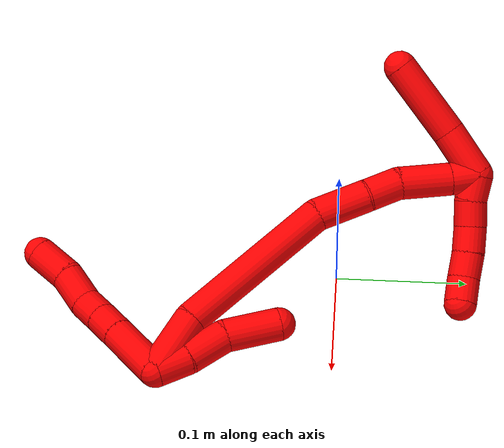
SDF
<sdf version="1.7">
 <world name="default">
  <model name="2">
   <static>0</static>
   <link name="2">
    <collision name="collision-cylinder-e_1_2_8">
     <pose>-0.023651 -0.005801 0.003019 1.09096 -1.30105 -0.865363</pose>
     <geometry><cylinder><radius>0.0125</radius><length>0.049076</length></cylinder></geometry>
     <surface>
      <friction><ode><mu>1.16</mu><mu2>1.16</mu2><slip1>0</slip1><slip2>0</slip2></ode></friction>
      <contact><ode><kp>1e+06</kp><kd>1</kd><max_vel>0</max_vel><min_depth>0.001</min_depth></ode></contact>
     </surface>
    </collision>
    <visual name="visual-cylinder-e_1_2_8">
     <pose>-0.023651 -0.005801 0.003019 1.09096 -1.30105 -0.865363</pose>
     <geometry><cylinder><radius>0.0125</radius><length>0.049076</length></cylinder></geometry>
     <material><ambient>1 0 0 1</ambient></material>
    </visual>
    <collision name="collision-cylinder-e_2_8_9">
     <pose>-0.058328 -0.014393 0.007398 1.11726 -1.29627 -0.884157</pose>
     <geometry><cylinder><radius>0.0125</radius><length>0.02291</length></cylinder></geometry>
     <surface>
      <friction><ode><mu>1.16</mu><mu2>1.16</mu2><slip1>0</slip1><slip2>0</slip2></ode></friction>
      <contact><ode><kp>1e+06</kp><kd>1</kd><max_vel>0</max_vel><min_depth>0.001</min_depth></ode></contact>
     </surface>
    </collision>
    <visual name="visual-cylinder-e_2_8_9">
     <pose>-0.058328 -0.014393 0.007398 1.11726 -1.29627 -0.884157</pose>
     <geometry><cylinder><radius>0.0125</radius><length>0.02291</length></cylinder></geometry>
     <material><ambient>1 0 0 1</ambient></material>
    </visual>
    <collision name="collision-cylinder-e_3_9_10">
     <pose>-0.079081 -0.0199 0.01066 0.960039 -1.24229 -0.713304</pose>
     <geometry><cylinder><radius>0.0125</radius><length>0.020554</length></cylinder></geometry>
     <surface>
      <friction><ode><mu>1.16</mu><mu2>1.16</mu2><slip1>0</slip1><slip2>0</slip2></ode></friction>
      <contact><ode><kp>1e+06</kp><kd>1</kd><max_vel>0</max_vel><min_depth>0.001</min_depth></ode></contact>
     </surface>
    </collision>
    <visual name="visual-cylinder-e_3_9_10">
     <pose>-0.079081 -0.0199 0.01066 0.960039 -1.24229 -0.713304</pose>
     <geometry><cylinder><radius>0.0125</radius><length>0.020554</length></cylinder></geometry>
     <material><ambient>1 0 0 1</ambient></material>
    </visual>
    <collision name="collision-cylinder-e_4_10_11">
     <pose>-0.10151 -0.023505 0.017973 0.162628 -1.16324 -0.107059</pose>
     <geometry><cylinder><radius>0.0125</radius><length>0.02767</length></cylinder></geometry>
     <surface>
      <friction><ode><mu>1.16</mu><mu2>1.16</mu2><slip1>0</slip1><slip2>0</slip2></ode></friction>
      <contact><ode><kp>1e+06</kp><kd>1</kd><max_vel>0</max_vel><min_depth>0.001</min_depth></ode></contact>
     </surface>
    </collision>
    <visual name="visual-cylinder-e_4_10_11">
     <pose>-0.10151 -0.023505 0.017973 0.162628 -1.16324 -0.107059</pose>
     <geometry><cylinder><radius>0.0125</radius><length>0.02767</length></cylinder></geometry>
     <material><ambient>1 0 0 1</ambient></material>
    </visual>
    <collision name="collision-cylinder-e_5_11_6">
     <pose>-0.127235 -0.028956 0.028991 0.683121 -1.06404 -0.412557</pose>
     <geometry><cylinder><radius>0.0125</radius><length>0.02979</length></cylinder></geometry>
     <surface>
      <friction><ode><mu>1.16</mu><mu2>1.16</mu2><slip1>0</slip1><slip2>0</slip2></ode></friction>
      <contact><ode><kp>1e+06</kp><kd>1</kd><max_vel>0</max_vel><min_depth>0.001</min_depth></ode></contact>
     </surface>
    </collision>
    <visual name="visual-cylinder-e_5_11_6">
     <pose>-0.127235 -0.028956 0.028991 0.683121 -1.06404 -0.412557</pose>
     <geometry><cylinder><radius>0.0125</radius><length>0.02979</length></cylinder></geometry>
     <material><ambient>1 0 0 1</ambient></material>
    </visual>
    <collision name="collision-cylinder-e_1_2_12">
     <pose>-0.000959 0.012029 -0.004758 -1.94743 -0.074038 0.108844</pose>
     <geometry><cylinder><radius>0.0125</radius><length>0.025942</length></cylinder></geometry>
     <surface>
      <friction><ode><mu>1.16</mu><mu2>1.16</mu2><slip1>0</slip1><slip2>0</slip2></ode></friction>
      <contact><ode><kp>1e+06</kp><kd>1</kd><max_vel>0</max_vel><min_depth>0.001</min_depth></ode></contact>
     </surface>
    </collision>
    <visual name="visual-cylinder-e_1_2_12">
     <pose>-0.000959 0.012029 -0.004758 -1.94743 -0.074038 0.108844</pose>
     <geometry><cylinder><radius>0.0125</radius><length>0.025942</length></cylinder></geometry>
     <material><ambient>1 0 0 1</ambient></material>
    </visual>
    <collision name="collision-cylinder-e_2_12_13">
     <pose>-0.005421 0.039109 -0.013981 -1.8592 -0.219467 0.293103</pose>
     <geometry><cylinder><radius>0.0125</radius><length>0.032171</length></cylinder></geometry>
     <surface>
      <friction><ode><mu>1.16</mu><mu2>1.16</mu2><slip1>0</slip1><slip2>0</slip2></ode></friction>
      <contact><ode><kp>1e+06</kp><kd>1</kd><max_vel>0</max_vel><min_depth>0.001</min_depth></ode></contact>
     </surface>
    </collision>
    <visual name="visual-cylinder-e_2_12_13">
     <pose>-0.005421 0.039109 -0.013981 -1.8592 -0.219467 0.293103</pose>
     <geometry><cylinder><radius>0.0125</radius><length>0.032171</length></cylinder></geometry>
     <material><ambient>1 0 0 1</ambient></material>
    </visual>
    <collision name="collision-cylinder-e_3_13_5">
     <pose>-0.007234 0.073005 -0.027426 -2.01546 0.080711 -0.127759</pose>
     <geometry><cylinder><radius>0.0125</radius><length>0.041887</length></cylinder></geometry>
     <surface>
      <friction><ode><mu>1.16</mu><mu2>1.16</mu2><slip1>0</slip1><slip2>0</slip2></ode></friction>
      <contact><ode><kp>1e+06</kp><kd>1</kd><max_vel>0</max_vel><min_depth>0.001</min_depth></ode></contact>
     </surface>
    </collision>
    <visual name="visual-cylinder-e_3_13_5">
     <pose>-0.007234 0.073005 -0.027426 -2.01546 0.080711 -0.127759</pose>
     <geometry><cylinder><radius>0.0125</radius><length>0.041887</length></cylinder></geometry>
     <material><ambient>1 0 0 1</ambient></material>
    </visual>
    <collision name="collision-cylinder-e_1_2_14">
     <pose>-0.012517 0.02037 -0.000249 -1.58304 -0.550991 0.557437</pose>
     <geometry><cylinder><radius>0.0125</radius><length>0.047819</length></cylinder></geometry>
     <surface>
      <friction><ode><mu>1.16</mu><mu2>1.16</mu2><slip1>0</slip1><slip2>0</slip2></ode></friction>
      <contact><ode><kp>1e+06</kp><kd>1</kd><max_vel>0</max_vel><min_depth>0.001</min_depth></ode></contact>
     </surface>
    </collision>
    <visual name="visual-cylinder-e_1_2_14">
     <pose>-0.012517 0.02037 -0.000249 -1.58304 -0.550991 0.557437</pose>
     <geometry><cylinder><radius>0.0125</radius><length>0.047819</length></cylinder></geometry>
     <material><ambient>1 0 0 1</ambient></material>
    </visual>
    <collision name="collision-cylinder-e_2_14_15">
     <pose>-0.041825 0.099947 -0.007994 -1.69671 -0.27424 0.310587</pose>
     <geometry><cylinder><radius>0.0125</radius><length>0.123994</length></cylinder></geometry>
     <surface>
      <friction><ode><mu>1.16</mu><mu2>1.16</mu2><slip1>0</slip1><slip2>0</slip2></ode></friction>
      <contact><ode><kp>1e+06</kp><kd>1</kd><max_vel>0</max_vel><min_depth>0.001</min_depth></ode></contact>
     </surface>
    </collision>
    <visual name="visual-cylinder-e_2_14_15">
     <pose>-0.041825 0.099947 -0.007994 -1.69671 -0.27424 0.310587</pose>
     <geometry><cylinder><radius>0.0125</radius><length>0.123994</length></cylinder></geometry>
     <material><ambient>1 0 0 1</ambient></material>
    </visual>
    <collision name="collision-cylinder-e_3_15_16">
     <pose>-0.057728 0.178868 -0.020838 -1.83576 0.043337 -0.056657</pose>
     <geometry><cylinder><radius>0.0125</radius><length>0.040892</length></cylinder></geometry>
     <surface>
      <friction><ode><mu>1.16</mu><mu2>1.16</mu2><slip1>0</slip1><slip2>0</slip2></ode></friction>
      <contact><ode><kp>1e+06</kp><kd>1</kd><max_vel>0</max_vel><min_depth>0.001</min_depth></ode></contact>
     </surface>
    </collision>
    <visual name="visual-cylinder-e_3_15_16">
     <pose>-0.057728 0.178868 -0.020838 -1.83576 0.043337 -0.056657</pose>
     <geometry><cylinder><radius>0.0125</radius><length>0.040892</length></cylinder></geometry>
     <material><ambient>1 0 0 1</ambient></material>
    </visual>
    <collision name="collision-cylinder-e_4_16_17">
     <pose>-0.057654 0.210805 -0.030677 -1.92281 -0.06225 0.089151</pose>
     <geometry><cylinder><radius>0.0125</radius><length>0.026093</length></cylinder></geometry>
     <surface>
      <friction><ode><mu>1.16</mu><mu2>1.16</mu2><slip1>0</slip1><slip2>0</slip2></ode></friction>
      <contact><ode><kp>1e+06</kp><kd>1</kd><max_vel>0</max_vel><min_depth>0.001</min_depth></ode></contact>
     </surface>
    </collision>
    <visual name="visual-cylinder-e_4_16_17">
     <pose>-0.057654 0.210805 -0.030677 -1.92281 -0.06225 0.089151</pose>
     <geometry><cylinder><radius>0.0125</radius><length>0.026093</length></cylinder></geometry>
     <material><ambient>1 0 0 1</ambient></material>
    </visual>
    <collision name="collision-cylinder-e_5_17_18">
     <pose>-0.055021 0.240211 -0.045041 -2.09234 0.172108 -0.295951</pose>
     <geometry><cylinder><radius>0.0125</radius><length>0.040231</length></cylinder></geometry>
     <surface>
      <friction><ode><mu>1.16</mu><mu2>1.16</mu2><slip1>0</slip1><slip2>0</slip2></ode></friction>
      <contact><ode><kp>1e+06</kp><kd>1</kd><max_vel>0</max_vel><min_depth>0.001</min_depth></ode></contact>
     </surface>
    </collision>
    <visual name="visual-cylinder-e_5_17_18">
     <pose>-0.055021 0.240211 -0.045041 -2.09234 0.172108 -0.295951</pose>
     <geometry><cylinder><radius>0.0125</radius><length>0.040231</length></cylinder></geometry>
     <material><ambient>1 0 0 1</ambient></material>
    </visual>
    <collision name="collision-cylinder-e_6_18_1">
     <pose>-0.049719 0.266807 -0.059146 -1.99327 0.178036 -0.274232</pose>
     <geometry><cylinder><radius>0.0125</radius><length>0.020971</length></cylinder></geometry>
     <surface>
      <friction><ode><mu>1.16</mu><mu2>1.16</mu2><slip1>0</slip1><slip2>0</slip2></ode></friction>
      <contact><ode><kp>1e+06</kp><kd>1</kd><max_vel>0</max_vel><min_depth>0.001</min_depth></ode></contact>
     </surface>
    </collision>
    <visual name="visual-cylinder-e_6_18_1">
     <pose>-0.049719 0.266807 -0.059146 -1.99327 0.178036 -0.274232</pose>
     <geometry><cylinder><radius>0.0125</radius><length>0.020971</length></cylinder></geometry>
     <material><ambient>1 0 0 1</ambient></material>
    </visual>
    <collision name="collision-cylinder-e_1_1_19">
     <pose>-0.043569 0.268875 -0.068634 2.19205 0.443674 0.827042</pose>
     <geometry><cylinder><radius>0.0125</radius><length>0.02</length></cylinder></geometry>
     <surface>
      <friction><ode><mu>1.16</mu><mu2>1.16</mu2><slip1>0</slip1><slip2>0</slip2></ode></friction>
      <contact><ode><kp>1e+06</kp><kd>1</kd><max_vel>0</max_vel><min_depth>0.001</min_depth></ode></contact>
     </surface>
    </collision>
    <visual name="visual-cylinder-e_1_1_19">
     <pose>-0.043569 0.268875 -0.068634 2.19205 0.443674 0.827042</pose>
     <geometry><cylinder><radius>0.0125</radius><length>0.02</length></cylinder></geometry>
     <material><ambient>1 0 0 1</ambient></material>
    </visual>
    <collision name="collision-cylinder-e_2_19_20">
     <pose>-0.03389 0.255917 -0.080173 2.41221 0.568838 1.30703</pose>
     <geometry><cylinder><radius>0.0125</radius><length>0.02</length></cylinder></geometry>
     <surface>
      <friction><ode><mu>1.16</mu><mu2>1.16</mu2><slip1>0</slip1><slip2>0</slip2></ode></friction>
      <contact><ode><kp>1e+06</kp><kd>1</kd><max_vel>0</max_vel><min_depth>0.001</min_depth></ode></contact>
     </surface>
    </collision>
    <visual name="visual-cylinder-e_2_19_20">
     <pose>-0.03389 0.255917 -0.080173 2.41221 0.568838 1.30703</pose>
     <geometry><cylinder><radius>0.0125</radius><length>0.02</length></cylinder></geometry>
     <material><ambient>1 0 0 1</ambient></material>
    </visual>
    <collision name="collision-cylinder-e_3_20_21">
     <pose>-0.022441 0.24414 -0.091482 2.25515 0.651432 1.23676</pose>
     <geometry><cylinder><radius>0.0125</radius><length>0.02</length></cylinder></geometry>
     <surface>
      <friction><ode><mu>1.16</mu><mu2>1.16</mu2><slip1>0</slip1><slip2>0</slip2></ode></friction>
      <contact><ode><kp>1e+06</kp><kd>1</kd><max_vel>0</max_vel><min_depth>0.001</min_depth></ode></contact>
     </surface>
    </collision>
    <visual name="visual-cylinder-e_3_20_21">
     <pose>-0.022441 0.24414 -0.091482 2.25515 0.651432 1.23676</pose>
     <geometry><cylinder><radius>0.0125</radius><length>0.02</length></cylinder></geometry>
     <material><ambient>1 0 0 1</ambient></material>
    </visual>
    <collision name="collision-cylinder-e_4_21_22">
     <pose>-0.010662 0.231043 -0.100895 2.13463 0.608369 1.03601</pose>
     <geometry><cylinder><radius>0.0125</radius><length>0.02</length></cylinder></geometry>
     <surface>
      <friction><ode><mu>1.16</mu><mu2>1.16</mu2><slip1>0</slip1><slip2>0</slip2></ode></friction>
      <contact><ode><kp>1e+06</kp><kd>1</kd><max_vel>0</max_vel><min_depth>0.001</min_depth></ode></contact>
     </surface>
    </collision>
    <visual name="visual-cylinder-e_4_21_22">
     <pose>-0.010662 0.231043 -0.100895 2.13463 0.608369 1.03601</pose>
     <geometry><cylinder><radius>0.0125</radius><length>0.02</length></cylinder></geometry>
     <material><ambient>1 0 0 1</ambient></material>
    </visual>
    <collision name="collision-cylinder-e_5_22_4">
     <pose>0.002185 0.217758 -0.10825 2.00832 0.793998 1.16531</pose>
     <geometry><cylinder><radius>0.0125</radius><length>0.02</length></cylinder></geometry>
     <surface>
      <friction><ode><mu>1.16</mu><mu2>1.16</mu2><slip1>0</slip1><slip2>0</slip2></ode></friction>
      <contact><ode><kp>1e+06</kp><kd>1</kd><max_vel>0</max_vel><min_depth>0.001</min_depth></ode></contact>
     </surface>
    </collision>
    <visual name="visual-cylinder-e_5_22_4">
     <pose>0.002185 0.217758 -0.10825 2.00832 0.793998 1.16531</pose>
     <geometry><cylinder><radius>0.0125</radius><length>0.02</length></cylinder></geometry>
     <material><ambient>1 0 0 1</ambient></material>
    </visual>
    <collision name="collision-cylinder-e_1_1_23">
     <pose>-0.061426 0.276203 -0.04957 0.001203 -0.77651 -0.000492</pose>
     <geometry><cylinder><radius>0.0125</radius><length>0.038709</length></cylinder></geometry>
     <surface>
      <friction><ode><mu>1.16</mu><mu2>1.16</mu2><slip1>0</slip1><slip2>0</slip2></ode></friction>
      <contact><ode><kp>1e+06</kp><kd>1</kd><max_vel>0</max_vel><min_depth>0.001</min_depth></ode></contact>
     </surface>
    </collision>
    <visual name="visual-cylinder-e_1_1_23">
     <pose>-0.061426 0.276203 -0.04957 0.001203 -0.77651 -0.000492</pose>
     <geometry><cylinder><radius>0.0125</radius><length>0.038709</length></cylinder></geometry>
     <material><ambient>1 0 0 1</ambient></material>
    </visual>
    <collision name="collision-cylinder-e_2_23_3">
     <pose>-0.094664 0.274656 -0.012318 0.065202 -0.697138 -0.023702</pose>
     <geometry><cylinder><radius>0.0125</radius><length>0.061291</length></cylinder></geometry>
     <surface>
      <friction><ode><mu>1.16</mu><mu2>1.16</mu2><slip1>0</slip1><slip2>0</slip2></ode></friction>
      <contact><ode><kp>1e+06</kp><kd>1</kd><max_vel>0</max_vel><min_depth>0.001</min_depth></ode></contact>
     </surface>
    </collision>
    <visual name="visual-cylinder-e_2_23_3">
     <pose>-0.094664 0.274656 -0.012318 0.065202 -0.697138 -0.023702</pose>
     <geometry><cylinder><radius>0.0125</radius><length>0.061291</length></cylinder></geometry>
     <material><ambient>1 0 0 1</ambient></material>
    </visual>
    <collision name="collision-sphere-3">
     <pose>-0.11434 0.273125 0.011127 0 -0 0</pose>
     <geometry><sphere><radius>0.0125</radius></sphere></geometry>
     <surface>
      <friction><ode><mu>1.16</mu><mu2>1.16</mu2><slip1>0</slip1><slip2>0</slip2></ode></friction>
      <contact><ode><kp>1e+06</kp><kd>1</kd><max_vel>0</max_vel><min_depth>0.001</min_depth></ode></contact>
     </surface>
    </collision>
    <visual name="visual-sphere-3">
     <pose>-0.11434 0.273125 0.011127 0 -0 0</pose>
     <geometry><sphere><radius>0.0125</radius></sphere></geometry>
     <material><ambient>1 0 0 1</ambient></material>
    </visual>
    <collision name="collision-sphere-23">
     <pose>-0.074989 0.276186 -0.035763 0 -0 0</pose>
     <geometry><sphere><radius>0.0125</radius></sphere></geometry>
     <surface>
      <friction><ode><mu>1.16</mu><mu2>1.16</mu2><slip1>0</slip1><slip2>0</slip2></ode></friction>
      <contact><ode><kp>1e+06</kp><kd>1</kd><max_vel>0</max_vel><min_depth>0.001</min_depth></ode></contact>
     </surface>
    </collision>
    <visual name="visual-sphere-23">
     <pose>-0.074989 0.276186 -0.035763 0 -0 0</pose>
     <geometry><sphere><radius>0.0125</radius></sphere></geometry>
     <material><ambient>1 0 0 1</ambient></material>
    </visual>
    <collision name="collision-sphere-4">
     <pose>0.009317 0.211408 -0.11122 0 -0 0</pose>
     <geometry><sphere><radius>0.0125</radius></sphere></geometry>
     <surface>
      <friction><ode><mu>1.16</mu><mu2>1.16</mu2><slip1>0</slip1><slip2>0</slip2></ode></friction>
      <contact><ode><kp>1e+06</kp><kd>1</kd><max_vel>0</max_vel><min_depth>0.001</min_depth></ode></contact>
     </surface>
    </collision>
    <visual name="visual-sphere-4">
     <pose>0.009317 0.211408 -0.11122 0 -0 0</pose>
     <geometry><sphere><radius>0.0125</radius></sphere></geometry>
     <material><ambient>1 0 0 1</ambient></material>
    </visual>
    <collision name="collision-sphere-22">
     <pose>-0.004947 0.224107 -0.10528 0 -0 0</pose>
     <geometry><sphere><radius>0.0125</radius></sphere></geometry>
     <surface>
      <friction><ode><mu>1.16</mu><mu2>1.16</mu2><slip1>0</slip1><slip2>0</slip2></ode></friction>
      <contact><ode><kp>1e+06</kp><kd>1</kd><max_vel>0</max_vel><min_depth>0.001</min_depth></ode></contact>
     </surface>
    </collision>
    <visual name="visual-sphere-22">
     <pose>-0.004947 0.224107 -0.10528 0 -0 0</pose>
     <geometry><sphere><radius>0.0125</radius></sphere></geometry>
     <material><ambient>1 0 0 1</ambient></material>
    </visual>
    <collision name="collision-sphere-21">
     <pose>-0.016377 0.237979 -0.096509 0 -0 0</pose>
     <geometry><sphere><radius>0.0125</radius></sphere></geometry>
     <surface>
      <friction><ode><mu>1.16</mu><mu2>1.16</mu2><slip1>0</slip1><slip2>0</slip2></ode></friction>
      <contact><ode><kp>1e+06</kp><kd>1</kd><max_vel>0</max_vel><min_depth>0.001</min_depth></ode></contact>
     </surface>
    </collision>
    <visual name="visual-sphere-21">
     <pose>-0.016377 0.237979 -0.096509 0 -0 0</pose>
     <geometry><sphere><radius>0.0125</radius></sphere></geometry>
     <material><ambient>1 0 0 1</ambient></material>
    </visual>
    <collision name="collision-sphere-20">
     <pose>-0.028504 0.250302 -0.086455 0 -0 0</pose>
     <geometry><sphere><radius>0.0125</radius></sphere></geometry>
     <surface>
      <friction><ode><mu>1.16</mu><mu2>1.16</mu2><slip1>0</slip1><slip2>0</slip2></ode></friction>
      <contact><ode><kp>1e+06</kp><kd>1</kd><max_vel>0</max_vel><min_depth>0.001</min_depth></ode></contact>
     </surface>
    </collision>
    <visual name="visual-sphere-20">
     <pose>-0.028504 0.250302 -0.086455 0 -0 0</pose>
     <geometry><sphere><radius>0.0125</radius></sphere></geometry>
     <material><ambient>1 0 0 1</ambient></material>
    </visual>
    <collision name="collision-sphere-6">
     <pose>-0.140258 -0.033519 0.034598 0 -0 0</pose>
     <geometry><sphere><radius>0.0125</radius></sphere></geometry>
     <surface>
      <friction><ode><mu>1.16</mu><mu2>1.16</mu2><slip1>0</slip1><slip2>0</slip2></ode></friction>
      <contact><ode><kp>1e+06</kp><kd>1</kd><max_vel>0</max_vel><min_depth>0.001</min_depth></ode></contact>
     </surface>
    </collision>
    <visual name="visual-sphere-6">
     <pose>-0.140258 -0.033519 0.034598 0 -0 0</pose>
     <geometry><sphere><radius>0.0125</radius></sphere></geometry>
     <material><ambient>1 0 0 1</ambient></material>
    </visual>
    <collision name="collision-sphere-11">
     <pose>-0.114212 -0.024393 0.023384 0 -0 0</pose>
     <geometry><sphere><radius>0.0125</radius></sphere></geometry>
     <surface>
      <friction><ode><mu>1.16</mu><mu2>1.16</mu2><slip1>0</slip1><slip2>0</slip2></ode></friction>
      <contact><ode><kp>1e+06</kp><kd>1</kd><max_vel>0</max_vel><min_depth>0.001</min_depth></ode></contact>
     </surface>
    </collision>
    <visual name="visual-sphere-11">
     <pose>-0.114212 -0.024393 0.023384 0 -0 0</pose>
     <geometry><sphere><radius>0.0125</radius></sphere></geometry>
     <material><ambient>1 0 0 1</ambient></material>
    </visual>
    <collision name="collision-sphere-10">
     <pose>-0.088809 -0.022617 0.012562 0 -0 0</pose>
     <geometry><sphere><radius>0.0125</radius></sphere></geometry>
     <surface>
      <friction><ode><mu>1.16</mu><mu2>1.16</mu2><slip1>0</slip1><slip2>0</slip2></ode></friction>
      <contact><ode><kp>1e+06</kp><kd>1</kd><max_vel>0</max_vel><min_depth>0.001</min_depth></ode></contact>
     </surface>
    </collision>
    <visual name="visual-sphere-10">
     <pose>-0.088809 -0.022617 0.012562 0 -0 0</pose>
     <geometry><sphere><radius>0.0125</radius></sphere></geometry>
     <material><ambient>1 0 0 1</ambient></material>
    </visual>
    <collision name="collision-sphere-9">
     <pose>-0.069354 -0.017184 0.008759 0 -0 0</pose>
     <geometry><sphere><radius>0.0125</radius></sphere></geometry>
     <surface>
      <friction><ode><mu>1.16</mu><mu2>1.16</mu2><slip1>0</slip1><slip2>0</slip2></ode></friction>
      <contact><ode><kp>1e+06</kp><kd>1</kd><max_vel>0</max_vel><min_depth>0.001</min_depth></ode></contact>
     </surface>
    </collision>
    <visual name="visual-sphere-9">
     <pose>-0.069354 -0.017184 0.008759 0 -0 0</pose>
     <geometry><sphere><radius>0.0125</radius></sphere></geometry>
     <material><ambient>1 0 0 1</ambient></material>
    </visual>
    <collision name="collision-sphere-2">
     <geometry><sphere><radius>0.0125</radius></sphere></geometry>
     <surface>
      <friction><ode><mu>1.16</mu><mu2>1.16</mu2><slip1>0</slip1><slip2>0</slip2></ode></friction>
      <contact><ode><kp>1e+06</kp><kd>1</kd><max_vel>0</max_vel><min_depth>0.001</min_depth></ode></contact>
     </surface>
    </collision>
    <visual name="visual-sphere-2">
     <geometry><sphere><radius>0.0125</radius></sphere></geometry>
     <material><ambient>1 0 0 1</ambient></material>
    </visual>
    <collision name="collision-sphere-19">
     <pose>-0.039277 0.261531 -0.073891 0 -0 0</pose>
     <geometry><sphere><radius>0.0125</radius></sphere></geometry>
     <surface>
      <friction><ode><mu>1.16</mu><mu2>1.16</mu2><slip1>0</slip1><slip2>0</slip2></ode></friction>
      <contact><ode><kp>1e+06</kp><kd>1</kd><max_vel>0</max_vel><min_depth>0.001</min_depth></ode></contact>
     </surface>
    </collision>
    <visual name="visual-sphere-19">
     <pose>-0.039277 0.261531 -0.073891 0 -0 0</pose>
     <geometry><sphere><radius>0.0125</radius></sphere></geometry>
     <material><ambient>1 0 0 1</ambient></material>
    </visual>
    <collision name="collision-sphere-8">
     <pose>-0.047302 -0.011601 0.006037 0 -0 0</pose>
     <geometry><sphere><radius>0.0125</radius></sphere></geometry>
     <surface>
      <friction><ode><mu>1.16</mu><mu2>1.16</mu2><slip1>0</slip1><slip2>0</slip2></ode></friction>
      <contact><ode><kp>1e+06</kp><kd>1</kd><max_vel>0</max_vel><min_depth>0.001</min_depth></ode></contact>
     </surface>
    </collision>
    <visual name="visual-sphere-8">
     <pose>-0.047302 -0.011601 0.006037 0 -0 0</pose>
     <geometry><sphere><radius>0.0125</radius></sphere></geometry>
     <material><ambient>1 0 0 1</ambient></material>
    </visual>
    <collision name="collision-sphere-12">
     <pose>-0.001919 0.024057 -0.009515 0 -0 0</pose>
     <geometry><sphere><radius>0.0125</radius></sphere></geometry>
     <surface>
      <friction><ode><mu>1.16</mu><mu2>1.16</mu2><slip1>0</slip1><slip2>0</slip2></ode></friction>
      <contact><ode><kp>1e+06</kp><kd>1</kd><max_vel>0</max_vel><min_depth>0.001</min_depth></ode></contact>
     </surface>
    </collision>
    <visual name="visual-sphere-12">
     <pose>-0.001919 0.024057 -0.009515 0 -0 0</pose>
     <geometry><sphere><radius>0.0125</radius></sphere></geometry>
     <material><ambient>1 0 0 1</ambient></material>
    </visual>
    <collision name="collision-sphere-13">
     <pose>-0.008923 0.05416 -0.018446 0 -0 0</pose>
     <geometry><sphere><radius>0.0125</radius></sphere></geometry>
     <surface>
      <friction><ode><mu>1.16</mu><mu2>1.16</mu2><slip1>0</slip1><slip2>0</slip2></ode></friction>
      <contact><ode><kp>1e+06</kp><kd>1</kd><max_vel>0</max_vel><min_depth>0.001</min_depth></ode></contact>
     </surface>
    </collision>
    <visual name="visual-sphere-13">
     <pose>-0.008923 0.05416 -0.018446 0 -0 0</pose>
     <geometry><sphere><radius>0.0125</radius></sphere></geometry>
     <material><ambient>1 0 0 1</ambient></material>
    </visual>
    <collision name="collision-sphere-5">
     <pose>-0.005546 0.091851 -0.036405 0 -0 0</pose>
     <geometry><sphere><radius>0.0125</radius></sphere></geometry>
     <surface>
      <friction><ode><mu>1.16</mu><mu2>1.16</mu2><slip1>0</slip1><slip2>0</slip2></ode></friction>
      <contact><ode><kp>1e+06</kp><kd>1</kd><max_vel>0</max_vel><min_depth>0.001</min_depth></ode></contact>
     </surface>
    </collision>
    <visual name="visual-sphere-5">
     <pose>-0.005546 0.091851 -0.036405 0 -0 0</pose>
     <geometry><sphere><radius>0.0125</radius></sphere></geometry>
     <material><ambient>1 0 0 1</ambient></material>
    </visual>
    <collision name="collision-sphere-14">
     <pose>-0.025035 0.040739 -0.000499 0 -0 0</pose>
     <geometry><sphere><radius>0.0125</radius></sphere></geometry>
     <surface>
      <friction><ode><mu>1.16</mu><mu2>1.16</mu2><slip1>0</slip1><slip2>0</slip2></ode></friction>
      <contact><ode><kp>1e+06</kp><kd>1</kd><max_vel>0</max_vel><min_depth>0.001</min_depth></ode></contact>
     </surface>
    </collision>
    <visual name="visual-sphere-14">
     <pose>-0.025035 0.040739 -0.000499 0 -0 0</pose>
     <geometry><sphere><radius>0.0125</radius></sphere></geometry>
     <material><ambient>1 0 0 1</ambient></material>
    </visual>
    <collision name="collision-sphere-15">
     <pose>-0.058614 0.159155 -0.015489 0 -0 0</pose>
     <geometry><sphere><radius>0.0125</radius></sphere></geometry>
     <surface>
      <friction><ode><mu>1.16</mu><mu2>1.16</mu2><slip1>0</slip1><slip2>0</slip2></ode></friction>
      <contact><ode><kp>1e+06</kp><kd>1</kd><max_vel>0</max_vel><min_depth>0.001</min_depth></ode></contact>
     </surface>
    </collision>
    <visual name="visual-sphere-15">
     <pose>-0.058614 0.159155 -0.015489 0 -0 0</pose>
     <geometry><sphere><radius>0.0125</radius></sphere></geometry>
     <material><ambient>1 0 0 1</ambient></material>
    </visual>
    <collision name="collision-sphere-16">
     <pose>-0.056843 0.198582 -0.026188 0 -0 0</pose>
     <geometry><sphere><radius>0.0125</radius></sphere></geometry>
     <surface>
      <friction><ode><mu>1.16</mu><mu2>1.16</mu2><slip1>0</slip1><slip2>0</slip2></ode></friction>
      <contact><ode><kp>1e+06</kp><kd>1</kd><max_vel>0</max_vel><min_depth>0.001</min_depth></ode></contact>
     </surface>
    </collision>
    <visual name="visual-sphere-16">
     <pose>-0.056843 0.198582 -0.026188 0 -0 0</pose>
     <geometry><sphere><radius>0.0125</radius></sphere></geometry>
     <material><ambient>1 0 0 1</ambient></material>
    </visual>
    <collision name="collision-sphere-17">
     <pose>-0.058466 0.223028 -0.035167 0 -0 0</pose>
     <geometry><sphere><radius>0.0125</radius></sphere></geometry>
     <surface>
      <friction><ode><mu>1.16</mu><mu2>1.16</mu2><slip1>0</slip1><slip2>0</slip2></ode></friction>
      <contact><ode><kp>1e+06</kp><kd>1</kd><max_vel>0</max_vel><min_depth>0.001</min_depth></ode></contact>
     </surface>
    </collision>
    <visual name="visual-sphere-17">
     <pose>-0.058466 0.223028 -0.035167 0 -0 0</pose>
     <geometry><sphere><radius>0.0125</radius></sphere></geometry>
     <material><ambient>1 0 0 1</ambient></material>
    </visual>
    <collision name="collision-sphere-18">
     <pose>-0.051576 0.257394 -0.054914 0 -0 0</pose>
     <geometry><sphere><radius>0.0125</radius></sphere></geometry>
     <surface>
      <friction><ode><mu>1.16</mu><mu2>1.16</mu2><slip1>0</slip1><slip2>0</slip2></ode></friction>
      <contact><ode><kp>1e+06</kp><kd>1</kd><max_vel>0</max_vel><min_depth>0.001</min_depth></ode></contact>
     </surface>
    </collision>
    <visual name="visual-sphere-18">
     <pose>-0.051576 0.257394 -0.054914 0 -0 0</pose>
     <geometry><sphere><radius>0.0125</radius></sphere></geometry>
     <material><ambient>1 0 0 1</ambient></material>
    </visual>
    <collision name="collision-sphere-1">
     <pose>-0.047862 0.27622 -0.063377 0 -0 0</pose>
     <geometry><sphere><radius>0.0125</radius></sphere></geometry>
     <surface>
      <friction><ode><mu>1.16</mu><mu2>1.16</mu2><slip1>0</slip1><slip2>0</slip2></ode></friction>
      <contact><ode><kp>1e+06</kp><kd>1</kd><max_vel>0</max_vel><min_depth>0.001</min_depth></ode></contact>
     </surface>
    </collision>
    <visual name="visual-sphere-1">
     <pose>-0.047862 0.27622 -0.063377 0 -0 0</pose>
     <geometry><sphere><radius>0.0125</radius></sphere></geometry>
     <material><ambient>1 0 0 1</ambient></material>
    </visual>
    <inertial>
     <pose>-0.045969 0.127217 -0.022926 0 -0 0</pose>
     <mass>0.75</mass>
     <inertia>
      <ixx>0.000255</ixx>
      <ixy>0</ixy>
      <ixz>0</ixz>
      <iyy>0.000108</iyy>
      <iyz>0</iyz>
      <izz>-0.000105</izz>
     </inertia>
    </inertial>
   </link>
   <pose>0.122402 -0.127927 0.014321 0.471001 -0.037479 0.413311</pose>
  </model>
 </world>
</sdf>
